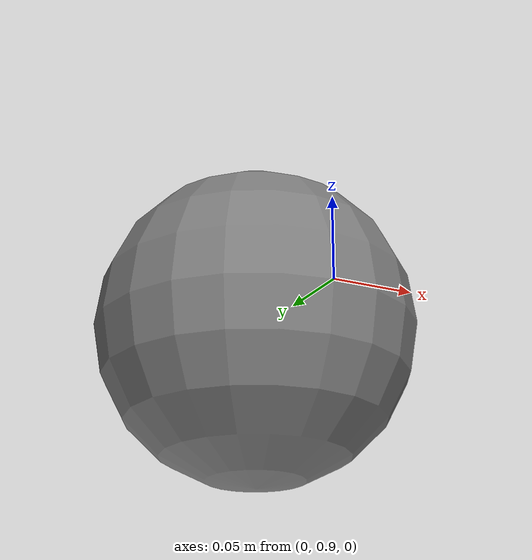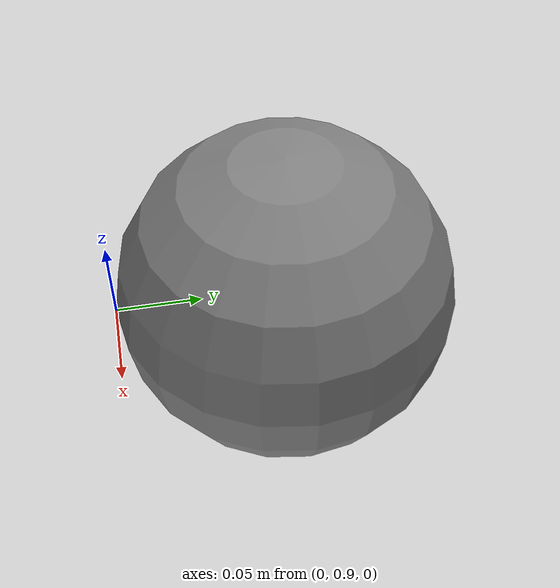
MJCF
<mujoco>
                <compiler angle="degree"/>
                <worldbody>
                    <body name="b">
                        <frame euler="0 0 90">
                            <geom name="fg" type="sphere" size="0.1" pos="1 0 0"/>
                        </frame>
                    </body>
                </worldbody>
            </mujoco>
